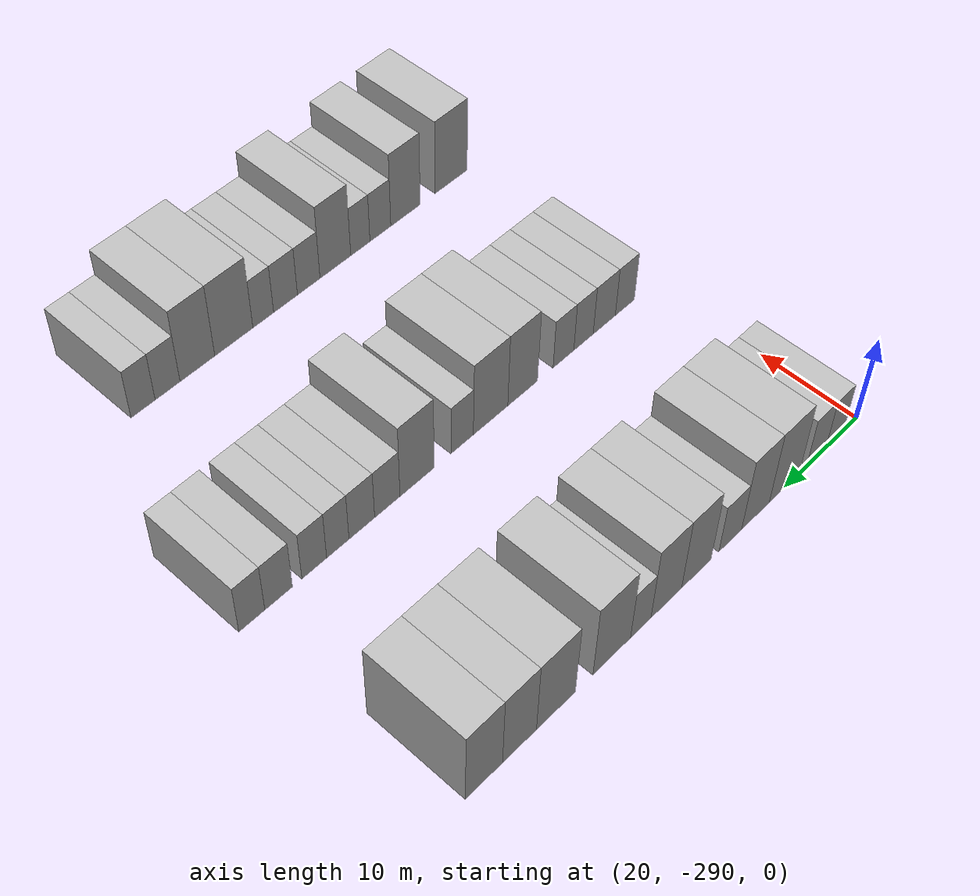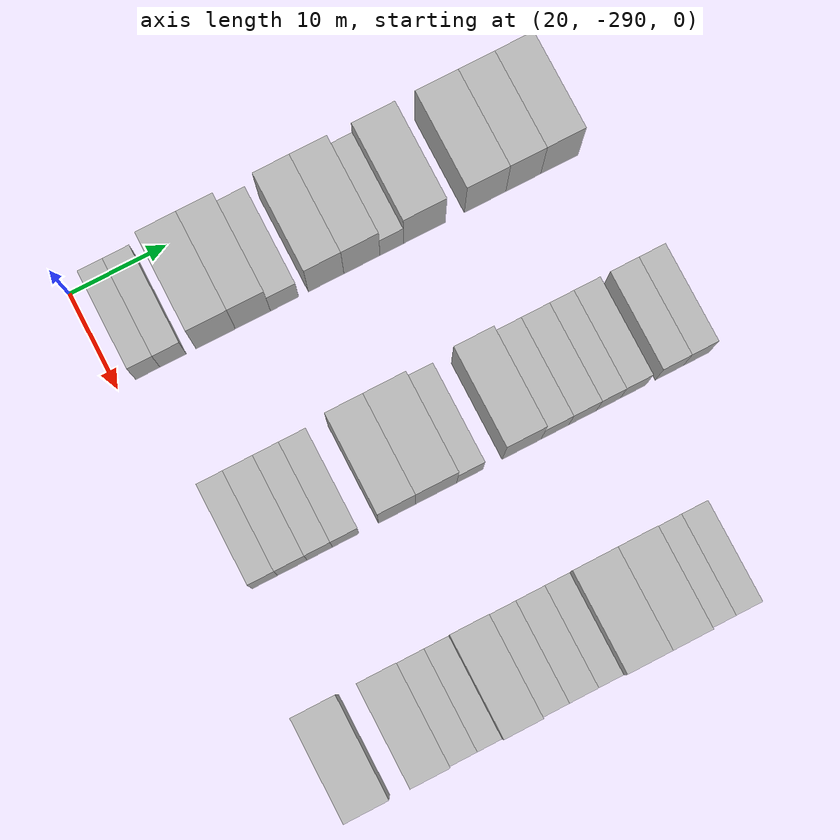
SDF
<sdf version="1.6">
 <world name="default">
  <model name="building_25">
   <static>1</static>
   <pose>25.0000 -286.8578 0 0.000000 0.000000 0.000000</pose>
   <link name="link">
    <pose>0 0 3.00 0 0 0</pose>
    <collision name="collision"><geometry><box><size>10.0000 2.4871 6.0000</size></box></geometry></collision>
    <visual name="visual">
     <cast_shadows>0</cast_shadows>
     <geometry><box><size>10.0000 2.4871 6.0000</size></box></geometry>
     <material>
      <script>
       <uri>model://HANNAS_wall/materials/scripts</uri>
       <uri>model://HANNAS_wall/materials/textures</uri>
       <name>vrc/HANNAS_wall</name>
      </script>
     </material>
    </visual>
   </link>
  </model>
  <model name="building_26">
   <static>1</static>
   <pose>25.0000 -284.2672 0 0.000000 0.000000 0.000000</pose>
   <link name="link">
    <pose>0 0 3.00 0 0 0</pose>
    <collision name="collision"><geometry><box><size>10.0000 2.6942 6.0000</size></box></geometry></collision>
    <visual name="visual">
     <cast_shadows>0</cast_shadows>
     <geometry><box><size>10.0000 2.6942 6.0000</size></box></geometry>
     <material>
      <script>
       <uri>model://HANNAS_wall/materials/scripts</uri>
       <uri>model://HANNAS_wall/materials/textures</uri>
       <name>vrc/HANNAS_wall</name>
      </script>
     </material>
    </visual>
   </link>
  </model>
  <model name="building_27">
   <static>1</static>
   <pose>25.0000 -279.8970 0 0.000000 0.000000 0.000000</pose>
   <link name="link">
    <pose>0 0 4.50 0 0 0</pose>
    <collision name="collision"><geometry><box><size>10.0000 4.0460 9.0000</size></box></geometry></collision>
    <visual name="visual">
     <cast_shadows>0</cast_shadows>
     <geometry><box><size>10.0000 4.0460 9.0000</size></box></geometry>
     <material>
      <script>
       <uri>model://HANNAS_wall/materials/scripts</uri>
       <uri>model://HANNAS_wall/materials/textures</uri>
       <name>vrc/HANNAS_wall</name>
      </script>
     </material>
    </visual>
   </link>
  </model>
  <model name="building_28">
   <static>1</static>
   <pose>25.0000 -276.0623 0 0.000000 0.000000 0.000000</pose>
   <link name="link">
    <pose>0 0 4.50 0 0 0</pose>
    <collision name="collision"><geometry><box><size>10.0000 3.6234 9.0000</size></box></geometry></collision>
    <visual name="visual">
     <cast_shadows>0</cast_shadows>
     <geometry><box><size>10.0000 3.6234 9.0000</size></box></geometry>
     <material>
      <script>
       <uri>model://HANNAS_wall/materials/scripts</uri>
       <uri>model://HANNAS_wall/materials/textures</uri>
       <name>vrc/HANNAS_wall</name>
      </script>
     </material>
    </visual>
   </link>
  </model>
  <model name="building_29">
   <static>1</static>
   <pose>25.0000 -272.7906 0 0.000000 0.000000 0.000000</pose>
   <link name="link">
    <pose>0 0 3.00 0 0 0</pose>
    <collision name="collision"><geometry><box><size>10.0000 2.9201 6.0000</size></box></geometry></collision>
    <visual name="visual">
     <cast_shadows>0</cast_shadows>
     <geometry><box><size>10.0000 2.9201 6.0000</size></box></geometry>
     <material>
      <script>
       <uri>model://HANNAS_wall/materials/scripts</uri>
       <uri>model://HANNAS_wall/materials/textures</uri>
       <name>vrc/HANNAS_wall</name>
      </script>
     </material>
    </visual>
   </link>
  </model>
  <model name="building_30">
   <static>1</static>
   <pose>25.0000 -268.4911 0 0.000000 0.000000 0.000000</pose>
   <link name="link">
    <pose>0 0 4.50 0 0 0</pose>
    <collision name="collision"><geometry><box><size>10.0000 3.6790 9.0000</size></box></geometry></collision>
    <visual name="visual">
     <cast_shadows>0</cast_shadows>
     <geometry><box><size>10.0000 3.6790 9.0000</size></box></geometry>
     <material>
      <script>
       <uri>model://HANNAS_wall/materials/scripts</uri>
       <uri>model://HANNAS_wall/materials/textures</uri>
       <name>vrc/HANNAS_wall</name>
      </script>
     </material>
    </visual>
   </link>
  </model>
  <model name="building_31">
   <static>1</static>
   <pose>25.0000 -264.7799 0 0.000000 0.000000 0.000000</pose>
   <link name="link">
    <pose>0 0 4.50 0 0 0</pose>
    <collision name="collision"><geometry><box><size>10.0000 3.7434 9.0000</size></box></geometry></collision>
    <visual name="visual">
     <cast_shadows>0</cast_shadows>
     <geometry><box><size>10.0000 3.7434 9.0000</size></box></geometry>
     <material>
      <script>
       <uri>model://HANNAS_wall/materials/scripts</uri>
       <uri>model://HANNAS_wall/materials/textures</uri>
       <name>vrc/HANNAS_wall</name>
      </script>
     </material>
    </visual>
   </link>
  </model>
  <model name="building_32">
   <static>1</static>
   <pose>25.0000 -261.6918 0 0.000000 0.000000 0.000000</pose>
   <link name="link">
    <pose>0 0 3.00 0 0 0</pose>
    <collision name="collision"><geometry><box><size>10.0000 2.4328 6.0000</size></box></geometry></collision>
    <visual name="visual">
     <cast_shadows>0</cast_shadows>
     <geometry><box><size>10.0000 2.4328 6.0000</size></box></geometry>
     <material>
      <script>
       <uri>model://HANNAS_wall/materials/scripts</uri>
       <uri>model://HANNAS_wall/materials/textures</uri>
       <name>vrc/HANNAS_wall</name>
      </script>
     </material>
    </visual>
   </link>
  </model>
  <model name="building_33">
   <static>1</static>
   <pose>25.0000 -258.2881 0 0.000000 0.000000 0.000000</pose>
   <link name="link">
    <pose>0 0 4.50 0 0 0</pose>
    <collision name="collision"><geometry><box><size>10.0000 4.3746 9.0000</size></box></geometry></collision>
    <visual name="visual">
     <cast_shadows>0</cast_shadows>
     <geometry><box><size>10.0000 4.3746 9.0000</size></box></geometry>
     <material>
      <script>
       <uri>model://HANNAS_wall/materials/scripts</uri>
       <uri>model://HANNAS_wall/materials/textures</uri>
       <name>vrc/HANNAS_wall</name>
      </script>
     </material>
    </visual>
   </link>
  </model>
  <model name="building_34">
   <static>1</static>
   <pose>25.0000 -251.9306 0 0.000000 0.000000 0.000000</pose>
   <link name="link">
    <pose>0 0 4.50 0 0 0</pose>
    <collision name="collision"><geometry><box><size>10.0000 4.3406 9.0000</size></box></geometry></collision>
    <visual name="visual">
     <cast_shadows>0</cast_shadows>
     <geometry><box><size>10.0000 4.3406 9.0000</size></box></geometry>
     <material>
      <script>
       <uri>model://HANNAS_wall/materials/scripts</uri>
       <uri>model://HANNAS_wall/materials/textures</uri>
       <name>vrc/HANNAS_wall</name>
      </script>
     </material>
    </visual>
   </link>
  </model>
  <model name="building_35">
   <static>1</static>
   <pose>25.0000 -247.9200 0 0.000000 0.000000 0.000000</pose>
   <link name="link">
    <pose>0 0 4.50 0 0 0</pose>
    <collision name="collision"><geometry><box><size>10.0000 3.6805 9.0000</size></box></geometry></collision>
    <visual name="visual">
     <cast_shadows>0</cast_shadows>
     <geometry><box><size>10.0000 3.6805 9.0000</size></box></geometry>
     <material>
      <script>
       <uri>model://HANNAS_wall/materials/scripts</uri>
       <uri>model://HANNAS_wall/materials/textures</uri>
       <name>vrc/HANNAS_wall</name>
      </script>
     </material>
    </visual>
   </link>
  </model>
  <model name="building_36">
   <static>1</static>
   <pose>25.0000 -244.1169 0 0.000000 0.000000 0.000000</pose>
   <link name="link">
    <pose>0 0 4.50 0 0 0</pose>
    <collision name="collision"><geometry><box><size>10.0000 3.9257 9.0000</size></box></geometry></collision>
    <visual name="visual">
     <cast_shadows>0</cast_shadows>
     <geometry><box><size>10.0000 3.9257 9.0000</size></box></geometry>
     <material>
      <script>
       <uri>model://HANNAS_wall/materials/scripts</uri>
       <uri>model://HANNAS_wall/materials/textures</uri>
       <name>vrc/HANNAS_wall</name>
      </script>
     </material>
    </visual>
   </link>
  </model>
  <model name="building_216">
   <static>1</static>
   <pose>47.0000 -285.9589 0 0.000000 0.000000 0.000000</pose>
   <link name="link">
    <pose>0 0 3.00 0 0 0</pose>
    <collision name="collision"><geometry><box><size>10.0000 2.6035 6.0000</size></box></geometry></collision>
    <visual name="visual">
     <cast_shadows>0</cast_shadows>
     <geometry><box><size>10.0000 2.6035 6.0000</size></box></geometry>
     <material>
      <script>
       <uri>model://HANNAS_wall/materials/scripts</uri>
       <uri>model://HANNAS_wall/materials/textures</uri>
       <name>vrc/HANNAS_wall</name>
      </script>
     </material>
    </visual>
   </link>
  </model>
  <model name="building_217">
   <static>1</static>
   <pose>47.0000 -283.1711 0 0.000000 0.000000 0.000000</pose>
   <link name="link">
    <pose>0 0 3.00 0 0 0</pose>
    <collision name="collision"><geometry><box><size>10.0000 2.9721 6.0000</size></box></geometry></collision>
    <visual name="visual">
     <cast_shadows>0</cast_shadows>
     <geometry><box><size>10.0000 2.9721 6.0000</size></box></geometry>
     <material>
      <script>
       <uri>model://HANNAS_wall/materials/scripts</uri>
       <uri>model://HANNAS_wall/materials/textures</uri>
       <name>vrc/HANNAS_wall</name>
      </script>
     </material>
    </visual>
   </link>
  </model>
  <model name="building_218">
   <static>1</static>
   <pose>47.0000 -280.4014 0 0.000000 0.000000 0.000000</pose>
   <link name="link">
    <pose>0 0 3.00 0 0 0</pose>
    <collision name="collision"><geometry><box><size>10.0000 2.5673 6.0000</size></box></geometry></collision>
    <visual name="visual">
     <cast_shadows>0</cast_shadows>
     <geometry><box><size>10.0000 2.5673 6.0000</size></box></geometry>
     <material>
      <script>
       <uri>model://HANNAS_wall/materials/scripts</uri>
       <uri>model://HANNAS_wall/materials/textures</uri>
       <name>vrc/HANNAS_wall</name>
      </script>
     </material>
    </visual>
   </link>
  </model>
  <model name="building_219">
   <static>1</static>
   <pose>47.0000 -277.7692 0 0.000000 0.000000 0.000000</pose>
   <link name="link">
    <pose>0 0 3.00 0 0 0</pose>
    <collision name="collision"><geometry><box><size>10.0000 2.6970 6.0000</size></box></geometry></collision>
    <visual name="visual">
     <cast_shadows>0</cast_shadows>
     <geometry><box><size>10.0000 2.6970 6.0000</size></box></geometry>
     <material>
      <script>
       <uri>model://HANNAS_wall/materials/scripts</uri>
       <uri>model://HANNAS_wall/materials/textures</uri>
       <name>vrc/HANNAS_wall</name>
      </script>
     </material>
    </visual>
   </link>
  </model>
  <model name="building_220">
   <static>1</static>
   <pose>47.0000 -272.5467 0 0.000000 0.000000 0.000000</pose>
   <link name="link">
    <pose>0 0 4.50 0 0 0</pose>
    <collision name="collision"><geometry><box><size>10.0000 3.7481 9.0000</size></box></geometry></collision>
    <visual name="visual">
     <cast_shadows>0</cast_shadows>
     <geometry><box><size>10.0000 3.7481 9.0000</size></box></geometry>
     <material>
      <script>
       <uri>model://HANNAS_wall/materials/scripts</uri>
       <uri>model://HANNAS_wall/materials/textures</uri>
       <name>vrc/HANNAS_wall</name>
      </script>
     </material>
    </visual>
   </link>
  </model>
  <model name="building_221">
   <static>1</static>
   <pose>47.0000 -268.5493 0 0.000000 0.000000 0.000000</pose>
   <link name="link">
    <pose>0 0 4.50 0 0 0</pose>
    <collision name="collision"><geometry><box><size>10.0000 4.2468 9.0000</size></box></geometry></collision>
    <visual name="visual">
     <cast_shadows>0</cast_shadows>
     <geometry><box><size>10.0000 4.2468 9.0000</size></box></geometry>
     <material>
      <script>
       <uri>model://HANNAS_wall/materials/scripts</uri>
       <uri>model://HANNAS_wall/materials/textures</uri>
       <name>vrc/HANNAS_wall</name>
      </script>
     </material>
    </visual>
   </link>
  </model>
  <model name="building_222">
   <static>1</static>
   <pose>47.0000 -265.0817 0 0.000000 0.000000 0.000000</pose>
   <link name="link">
    <pose>0 0 3.00 0 0 0</pose>
    <collision name="collision"><geometry><box><size>10.0000 2.6883 6.0000</size></box></geometry></collision>
    <visual name="visual">
     <cast_shadows>0</cast_shadows>
     <geometry><box><size>10.0000 2.6883 6.0000</size></box></geometry>
     <material>
      <script>
       <uri>model://HANNAS_wall/materials/scripts</uri>
       <uri>model://HANNAS_wall/materials/textures</uri>
       <name>vrc/HANNAS_wall</name>
      </script>
     </material>
    </visual>
   </link>
  </model>
  <model name="building_223">
   <static>1</static>
   <pose>47.0000 -259.7424 0 0.000000 0.000000 0.000000</pose>
   <link name="link">
    <pose>0 0 4.50 0 0 0</pose>
    <collision name="collision"><geometry><box><size>10.0000 3.9904 9.0000</size></box></geometry></collision>
    <visual name="visual">
     <cast_shadows>0</cast_shadows>
     <geometry><box><size>10.0000 3.9904 9.0000</size></box></geometry>
     <material>
      <script>
       <uri>model://HANNAS_wall/materials/scripts</uri>
       <uri>model://HANNAS_wall/materials/textures</uri>
       <name>vrc/HANNAS_wall</name>
      </script>
     </material>
    </visual>
   </link>
  </model>
  <model name="building_224">
   <static>1</static>
   <pose>47.0000 -256.3071 0 0.000000 0.000000 0.000000</pose>
   <link name="link">
    <pose>0 0 3.00 0 0 0</pose>
    <collision name="collision"><geometry><box><size>10.0000 2.8803 6.0000</size></box></geometry></collision>
    <visual name="visual">
     <cast_shadows>0</cast_shadows>
     <geometry><box><size>10.0000 2.8803 6.0000</size></box></geometry>
     <material>
      <script>
       <uri>model://HANNAS_wall/materials/scripts</uri>
       <uri>model://HANNAS_wall/materials/textures</uri>
       <name>vrc/HANNAS_wall</name>
      </script>
     </material>
    </visual>
   </link>
  </model>
  <model name="building_225">
   <static>1</static>
   <pose>47.0000 -253.4334 0 0.000000 0.000000 0.000000</pose>
   <link name="link">
    <pose>0 0 3.00 0 0 0</pose>
    <collision name="collision"><geometry><box><size>10.0000 2.8670 6.0000</size></box></geometry></collision>
    <visual name="visual">
     <cast_shadows>0</cast_shadows>
     <geometry><box><size>10.0000 2.8670 6.0000</size></box></geometry>
     <material>
      <script>
       <uri>model://HANNAS_wall/materials/scripts</uri>
       <uri>model://HANNAS_wall/materials/textures</uri>
       <name>vrc/HANNAS_wall</name>
      </script>
     </material>
    </visual>
   </link>
  </model>
  <model name="building_226">
   <static>1</static>
   <pose>47.0000 -250.7729 0 0.000000 0.000000 0.000000</pose>
   <link name="link">
    <pose>0 0 3.00 0 0 0</pose>
    <collision name="collision"><geometry><box><size>10.0000 2.4540 6.0000</size></box></geometry></collision>
    <visual name="visual">
     <cast_shadows>0</cast_shadows>
     <geometry><box><size>10.0000 2.4540 6.0000</size></box></geometry>
     <material>
      <script>
       <uri>model://HANNAS_wall/materials/scripts</uri>
       <uri>model://HANNAS_wall/materials/textures</uri>
       <name>vrc/HANNAS_wall</name>
      </script>
     </material>
    </visual>
   </link>
  </model>
  <model name="building_227">
   <static>1</static>
   <pose>47.0000 -248.2055 0 0.000000 0.000000 0.000000</pose>
   <link name="link">
    <pose>0 0 3.00 0 0 0</pose>
    <collision name="collision"><geometry><box><size>10.0000 2.6808 6.0000</size></box></geometry></collision>
    <visual name="visual">
     <cast_shadows>0</cast_shadows>
     <geometry><box><size>10.0000 2.6808 6.0000</size></box></geometry>
     <material>
      <script>
       <uri>model://HANNAS_wall/materials/scripts</uri>
       <uri>model://HANNAS_wall/materials/textures</uri>
       <name>vrc/HANNAS_wall</name>
      </script>
     </material>
    </visual>
   </link>
  </model>
  <model name="building_228">
   <static>1</static>
   <pose>47.0000 -244.4098 0 0.000000 0.000000 0.000000</pose>
   <link name="link">
    <pose>0 0 3.00 0 0 0</pose>
    <collision name="collision"><geometry><box><size>10.0000 2.9105 6.0000</size></box></geometry></collision>
    <visual name="visual">
     <cast_shadows>0</cast_shadows>
     <geometry><box><size>10.0000 2.9105 6.0000</size></box></geometry>
     <material>
      <script>
       <uri>model://HANNAS_wall/materials/scripts</uri>
       <uri>model://HANNAS_wall/materials/textures</uri>
       <name>vrc/HANNAS_wall</name>
      </script>
     </material>
    </visual>
   </link>
  </model>
  <model name="building_229">
   <static>1</static>
   <pose>47.0000 -241.6061 0 0.000000 0.000000 0.000000</pose>
   <link name="link">
    <pose>0 0 3.00 0 0 0</pose>
    <collision name="collision"><geometry><box><size>10.0000 2.6969 6.0000</size></box></geometry></collision>
    <visual name="visual">
     <cast_shadows>0</cast_shadows>
     <geometry><box><size>10.0000 2.6969 6.0000</size></box></geometry>
     <material>
      <script>
       <uri>model://HANNAS_wall/materials/scripts</uri>
       <uri>model://HANNAS_wall/materials/textures</uri>
       <name>vrc/HANNAS_wall</name>
      </script>
     </material>
    </visual>
   </link>
  </model>
  <model name="building_408">
   <static>1</static>
   <pose>69.0000 -286.8256 0 0.000000 0.000000 0.000000</pose>
   <link name="link">
    <pose>0 0 4.50 0 0 0</pose>
    <collision name="collision"><geometry><box><size>10.0000 4.3468 9.0000</size></box></geometry></collision>
    <visual name="visual">
     <cast_shadows>0</cast_shadows>
     <geometry><box><size>10.0000 4.3468 9.0000</size></box></geometry>
     <material>
      <script>
       <uri>model://HANNAS_wall/materials/scripts</uri>
       <uri>model://HANNAS_wall/materials/textures</uri>
       <name>vrc/HANNAS_wall</name>
      </script>
     </material>
    </visual>
   </link>
  </model>
  <model name="building_409">
   <static>1</static>
   <pose>69.0000 -280.7191 0 0.000000 0.000000 0.000000</pose>
   <link name="link">
    <pose>0 0 4.50 0 0 0</pose>
    <collision name="collision"><geometry><box><size>10.0000 3.8662 9.0000</size></box></geometry></collision>
    <visual name="visual">
     <cast_shadows>0</cast_shadows>
     <geometry><box><size>10.0000 3.8662 9.0000</size></box></geometry>
     <material>
      <script>
       <uri>model://HANNAS_wall/materials/scripts</uri>
       <uri>model://HANNAS_wall/materials/textures</uri>
       <name>vrc/HANNAS_wall</name>
      </script>
     </material>
    </visual>
   </link>
  </model>
  <model name="building_410">
   <static>1</static>
   <pose>69.0000 -277.4391 0 0.000000 0.000000 0.000000</pose>
   <link name="link">
    <pose>0 0 3.00 0 0 0</pose>
    <collision name="collision"><geometry><box><size>10.0000 2.6938 6.0000</size></box></geometry></collision>
    <visual name="visual">
     <cast_shadows>0</cast_shadows>
     <geometry><box><size>10.0000 2.6938 6.0000</size></box></geometry>
     <material>
      <script>
       <uri>model://HANNAS_wall/materials/scripts</uri>
       <uri>model://HANNAS_wall/materials/textures</uri>
       <name>vrc/HANNAS_wall</name>
      </script>
     </material>
    </visual>
   </link>
  </model>
  <model name="building_411">
   <static>1</static>
   <pose>69.0000 -274.8714 0 0.000000 0.000000 0.000000</pose>
   <link name="link">
    <pose>0 0 3.00 0 0 0</pose>
    <collision name="collision"><geometry><box><size>10.0000 2.4416 6.0000</size></box></geometry></collision>
    <visual name="visual">
     <cast_shadows>0</cast_shadows>
     <geometry><box><size>10.0000 2.4416 6.0000</size></box></geometry>
     <material>
      <script>
       <uri>model://HANNAS_wall/materials/scripts</uri>
       <uri>model://HANNAS_wall/materials/textures</uri>
       <name>vrc/HANNAS_wall</name>
      </script>
     </material>
    </visual>
   </link>
  </model>
  <model name="building_412">
   <static>1</static>
   <pose>69.0000 -271.7291 0 0.000000 0.000000 0.000000</pose>
   <link name="link">
    <pose>0 0 4.50 0 0 0</pose>
    <collision name="collision"><geometry><box><size>10.0000 3.8429 9.0000</size></box></geometry></collision>
    <visual name="visual">
     <cast_shadows>0</cast_shadows>
     <geometry><box><size>10.0000 3.8429 9.0000</size></box></geometry>
     <material>
      <script>
       <uri>model://HANNAS_wall/materials/scripts</uri>
       <uri>model://HANNAS_wall/materials/textures</uri>
       <name>vrc/HANNAS_wall</name>
      </script>
     </material>
    </visual>
   </link>
  </model>
  <model name="building_413">
   <static>1</static>
   <pose>69.0000 -268.4269 0 0.000000 0.000000 0.000000</pose>
   <link name="link">
    <pose>0 0 3.00 0 0 0</pose>
    <collision name="collision"><geometry><box><size>10.0000 2.7615 6.0000</size></box></geometry></collision>
    <visual name="visual">
     <cast_shadows>0</cast_shadows>
     <geometry><box><size>10.0000 2.7615 6.0000</size></box></geometry>
     <material>
      <script>
       <uri>model://HANNAS_wall/materials/scripts</uri>
       <uri>model://HANNAS_wall/materials/textures</uri>
       <name>vrc/HANNAS_wall</name>
      </script>
     </material>
    </visual>
   </link>
  </model>
  <model name="building_414">
   <static>1</static>
   <pose>69.0000 -265.6092 0 0.000000 0.000000 0.000000</pose>
   <link name="link">
    <pose>0 0 3.00 0 0 0</pose>
    <collision name="collision"><geometry><box><size>10.0000 2.8740 6.0000</size></box></geometry></collision>
    <visual name="visual">
     <cast_shadows>0</cast_shadows>
     <geometry><box><size>10.0000 2.8740 6.0000</size></box></geometry>
     <material>
      <script>
       <uri>model://HANNAS_wall/materials/scripts</uri>
       <uri>model://HANNAS_wall/materials/textures</uri>
       <name>vrc/HANNAS_wall</name>
      </script>
     </material>
    </visual>
   </link>
  </model>
  <model name="building_415">
   <static>1</static>
   <pose>69.0000 -262.9417 0 0.000000 0.000000 0.000000</pose>
   <link name="link">
    <pose>0 0 3.00 0 0 0</pose>
    <collision name="collision"><geometry><box><size>10.0000 2.4610 6.0000</size></box></geometry></collision>
    <visual name="visual">
     <cast_shadows>0</cast_shadows>
     <geometry><box><size>10.0000 2.4610 6.0000</size></box></geometry>
     <material>
      <script>
       <uri>model://HANNAS_wall/materials/scripts</uri>
       <uri>model://HANNAS_wall/materials/textures</uri>
       <name>vrc/HANNAS_wall</name>
      </script>
     </material>
    </visual>
   </link>
  </model>
  <model name="building_416">
   <static>1</static>
   <pose>69.0000 -259.4945 0 0.000000 0.000000 0.000000</pose>
   <link name="link">
    <pose>0 0 4.50 0 0 0</pose>
    <collision name="collision"><geometry><box><size>10.0000 4.4333 9.0000</size></box></geometry></collision>
    <visual name="visual">
     <cast_shadows>0</cast_shadows>
     <geometry><box><size>10.0000 4.4333 9.0000</size></box></geometry>
     <material>
      <script>
       <uri>model://HANNAS_wall/materials/scripts</uri>
       <uri>model://HANNAS_wall/materials/textures</uri>
       <name>vrc/HANNAS_wall</name>
      </script>
     </material>
    </visual>
   </link>
  </model>
  <model name="building_417">
   <static>1</static>
   <pose>69.0000 -255.3060 0 0.000000 0.000000 0.000000</pose>
   <link name="link">
    <pose>0 0 4.50 0 0 0</pose>
    <collision name="collision"><geometry><box><size>10.0000 3.9437 9.0000</size></box></geometry></collision>
    <visual name="visual">
     <cast_shadows>0</cast_shadows>
     <geometry><box><size>10.0000 3.9437 9.0000</size></box></geometry>
     <material>
      <script>
       <uri>model://HANNAS_wall/materials/scripts</uri>
       <uri>model://HANNAS_wall/materials/textures</uri>
       <name>vrc/HANNAS_wall</name>
      </script>
     </material>
    </visual>
   </link>
  </model>
  <model name="building_418">
   <static>1</static>
   <pose>69.0000 -251.9521 0 0.000000 0.000000 0.000000</pose>
   <link name="link">
    <pose>0 0 3.00 0 0 0</pose>
    <collision name="collision"><geometry><box><size>10.0000 2.7642 6.0000</size></box></geometry></collision>
    <visual name="visual">
     <cast_shadows>0</cast_shadows>
     <geometry><box><size>10.0000 2.7642 6.0000</size></box></geometry>
     <material>
      <script>
       <uri>model://HANNAS_wall/materials/scripts</uri>
       <uri>model://HANNAS_wall/materials/textures</uri>
       <name>vrc/HANNAS_wall</name>
      </script>
     </material>
    </visual>
   </link>
  </model>
  <model name="building_419">
   <static>1</static>
   <pose>69.0000 -249.2507 0 0.000000 0.000000 0.000000</pose>
   <link name="link">
    <pose>0 0 3.00 0 0 0</pose>
    <collision name="collision"><geometry><box><size>10.0000 2.6385 6.0000</size></box></geometry></collision>
    <visual name="visual">
     <cast_shadows>0</cast_shadows>
     <geometry><box><size>10.0000 2.6385 6.0000</size></box></geometry>
     <material>
      <script>
       <uri>model://HANNAS_wall/materials/scripts</uri>
       <uri>model://HANNAS_wall/materials/textures</uri>
       <name>vrc/HANNAS_wall</name>
      </script>
     </material>
    </visual>
   </link>
  </model>
 </world>
</sdf>
